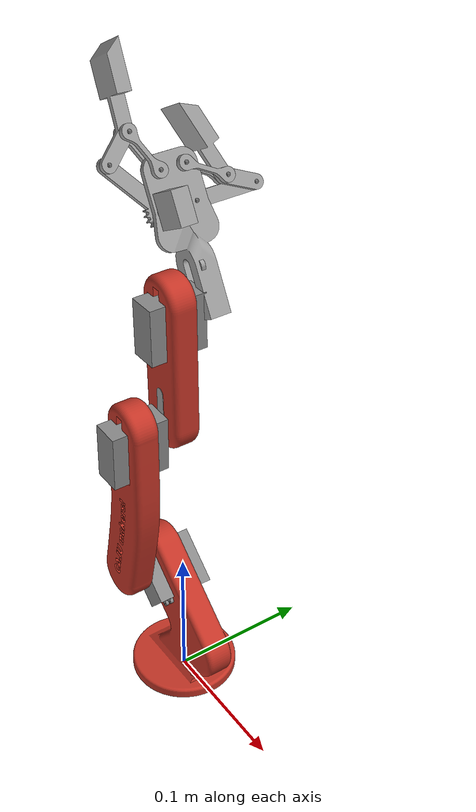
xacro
<?xml version="1.0"?>
<robot xmlns:xacro="http://www.ros.org/wiki/xacro" name="garra_final">

  <!-- Materials (shared across all assemblies) -->
  <material name="Laminado_vermelho_fosco">
    <color rgba="0.769 0.208 0.153 1.0"/>
  </material>
  <material name="Alum_nio_prata_anodizada">
    <color rgba="0.537 0.537 0.537 1.0"/>
  </material>
  <material name="A_o">
    <color rgba="0.627 0.627 0.627 1.0"/>
  </material>

  <!-- Assembly includes -->
  <xacro:include filename="$(find garra_final_description)/urdf/assemblies/Configura_o_1.urdf.xacro"/>
  <xacro:include filename="$(find garra_final_description)/urdf/assemblies/garra_final.urdf.xacro"/>

  <!-- Instantiate assemblies -->
  <xacro:Configura_o_1 prefix=""/>
  <xacro:garra_final prefix=""/>

  <!-- Mount joints (cross-assembly connections) -->
  <!-- These define how assemblies connect to each other. -->
  <!-- When swapping a dummy assembly with a real part, -->
  <!-- update the include + macro call above, and adjust -->
  <!-- parent/child link names in the mount joint below. -->

  <joint name="R_gido_73" type="fixed">
    <parent link="garra_final_showder_servo_horn_3"/>
    <child link="Base"/>
    <origin xyz="0.001272 -0.004945 0.062500" rpy="-0.896983 -1.570796 0.386126"/>
  </joint>

</robot>

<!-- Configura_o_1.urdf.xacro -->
<robot xmlns:xacro="http://www.ros.org/wiki/xacro" name="Configura_o_1_macro">

  <xacro:macro name="Configura_o_1" params="prefix">

    <!-- Links -->
    <link name="${prefix}Base">
      <inertial>
        <origin xyz="-0.057386 -0.026808 0.002045" rpy="0 0 0"/>
        <mass value="0.191532"/>
        <inertia ixx="1.578035e-04" ixy="-3.919167e-07" ixz="4.397693e-08"
                 iyy="1.697283e-05" iyz="-2.047143e-07" izz="1.622377e-04"/>
      </inertial>
      <visual>
        <origin xyz="0.000000 0.000000 0.000000" rpy="0.000000 0.000000 0.000000"/>
        <geometry>
          <mesh filename="package://garra_final_description/meshes/Configura_o_1/Base.dae" scale="1 1 1"/>
        </geometry>
        <material name="A_o"/>
      </visual>
      <collision>
        <origin xyz="0.000000 0.000000 0.000000" rpy="0.000000 0.000000 0.000000"/>
        <geometry>
          <mesh filename="package://garra_final_description/meshes/Configura_o_1/Base.dae" scale="1 1 1"/>
        </geometry>
      </collision>
    </link>

    <link name="${prefix}Motor">
      <inertial>
        <origin xyz="0.044221 0.026721 0.011750" rpy="0 0 0"/>
        <mass value="0.050915"/>
        <inertia ixx="4.587663e-06" ixy="0.000000e+00" ixz="0.000000e+00"
                 iyy="2.954137e-06" iyz="0.000000e+00" izz="2.855489e-06"/>
      </inertial>
      <visual>
        <origin xyz="0.000000 0.000000 0.000000" rpy="0.000000 0.000000 0.000000"/>
        <geometry>
          <mesh filename="package://garra_final_description/meshes/Configura_o_1/Motor.dae" scale="1 1 1"/>
        </geometry>
        <material name="A_o"/>
      </visual>
      <collision>
        <origin xyz="0.000000 0.000000 0.000000" rpy="0.000000 0.000000 0.000000"/>
        <geometry>
          <mesh filename="package://garra_final_description/meshes/Configura_o_1/Motor.dae" scale="1 1 1"/>
        </geometry>
      </collision>
    </link>

    <link name="${prefix}Engr_2">
      <inertial>
        <origin xyz="-0.012589 -0.010130 -0.001895" rpy="0 0 0"/>
        <mass value="0.020209"/>
        <inertia ixx="2.815627e-06" ixy="-2.942728e-06" ixz="-1.341961e-08"
                 iyy="4.114715e-06" iyz="-1.102947e-08" izz="6.875480e-06"/>
      </inertial>
      <visual>
        <origin xyz="0.062176 0.062886 0.004000" rpy="3.141593 0.000000 1.462285"/>
        <geometry>
          <mesh filename="package://garra_final_description/meshes/Configura_o_1/Engr_2.dae" scale="1 1 1"/>
        </geometry>
        <material name="A_o"/>
      </visual>
      <collision>
        <origin xyz="0.062176 0.062886 0.004000" rpy="3.141593 0.000000 1.462285"/>
        <geometry>
          <mesh filename="package://garra_final_description/meshes/Configura_o_1/Engr_2.dae" scale="1 1 1"/>
        </geometry>
      </collision>
    </link>

    <link name="${prefix}Junta_1">
      <inertial>
        <origin xyz="-0.013345 -0.006703 -0.002000" rpy="0 0 0"/>
        <mass value="0.006788"/>
        <inertia ixx="1.000000e-06" ixy="-4.401022e-07" ixz="0.000000e+00"
                 iyy="1.000000e-06" iyz="0.000000e+00" izz="1.165360e-06"/>
      </inertial>
      <visual>
        <origin xyz="0.096130 0.039228 -0.008000" rpy="0.000000 0.000000 -0.476992"/>
        <geometry>
          <mesh filename="package://garra_final_description/meshes/Configura_o_1/Junta_1.dae" scale="1 1 1"/>
        </geometry>
        <material name="A_o"/>
      </visual>
      <collision>
        <origin xyz="0.096130 0.039228 -0.008000" rpy="0.000000 0.000000 -0.476992"/>
        <geometry>
          <mesh filename="package://garra_final_description/meshes/Configura_o_1/Junta_1.dae" scale="1 1 1"/>
        </geometry>
      </collision>
    </link>

    <link name="${prefix}Junta_1_1">
      <inertial>
        <origin xyz="-0.013345 -0.006703 0.002000" rpy="0 0 0"/>
        <mass value="0.006788"/>
        <inertia ixx="1.000000e-06" ixy="-4.401022e-07" ixz="0.000000e+00"
                 iyy="1.000000e-06" iyz="0.000000e+00" izz="1.165360e-06"/>
      </inertial>
      <visual>
        <origin xyz="0.041768 0.030664 -0.004000" rpy="0.000000 0.000000 -1.733629"/>
        <geometry>
          <mesh filename="package://garra_final_description/meshes/Configura_o_1/Junta_1_1.dae" scale="1 1 1"/>
        </geometry>
        <material name="A_o"/>
      </visual>
      <collision>
        <origin xyz="0.041768 0.030664 -0.004000" rpy="0.000000 0.000000 -1.733629"/>
        <geometry>
          <mesh filename="package://garra_final_description/meshes/Configura_o_1/Junta_1_1.dae" scale="1 1 1"/>
        </geometry>
      </collision>
    </link>

    <link name="${prefix}Engr_1">
      <inertial>
        <origin xyz="-0.000027 0.015123 -0.002000" rpy="0 0 0"/>
        <mass value="0.023094"/>
        <inertia ixx="6.798312e-06" ixy="1.133009e-08" ixz="0.000000e+00"
                 iyy="1.000000e-06" iyz="0.000000e+00" izz="7.204434e-06"/>
      </inertial>
      <visual>
        <origin xyz="0.071958 -0.005705 0.004000" rpy="3.141593 0.000000 0.787188"/>
        <geometry>
          <mesh filename="package://garra_final_description/meshes/Configura_o_1/Engr_1.dae" scale="1 1 1"/>
        </geometry>
        <material name="A_o"/>
      </visual>
      <collision>
        <origin xyz="0.071958 -0.005705 0.004000" rpy="3.141593 0.000000 0.787188"/>
        <geometry>
          <mesh filename="package://garra_final_description/meshes/Configura_o_1/Engr_1.dae" scale="1 1 1"/>
        </geometry>
      </collision>
    </link>

    <link name="${prefix}Junta_2">
      <inertial>
        <origin xyz="0.007173 0.013099 -0.002000" rpy="0 0 0"/>
        <mass value="0.006788"/>
        <inertia ixx="1.000000e-06" ixy="-4.622335e-07" ixz="0.000000e+00"
                 iyy="1.000000e-06" iyz="0.000000e+00" izz="1.165360e-06"/>
      </inertial>
      <visual>
        <origin xyz="-0.085134 -0.072371 -0.008000" rpy="0.000000 0.000000 2.012283"/>
        <geometry>
          <mesh filename="package://garra_final_description/meshes/Configura_o_1/Junta_2.dae" scale="1 1 1"/>
        </geometry>
        <material name="A_o"/>
      </visual>
      <collision>
        <origin xyz="-0.085134 -0.072371 -0.008000" rpy="0.000000 0.000000 2.012283"/>
        <geometry>
          <mesh filename="package://garra_final_description/meshes/Configura_o_1/Junta_2.dae" scale="1 1 1"/>
        </geometry>
      </collision>
    </link>

    <link name="${prefix}Junta">
      <inertial>
        <origin xyz="0.007173 0.013099 0.002000" rpy="0 0 0"/>
        <mass value="0.006788"/>
        <inertia ixx="1.000000e-06" ixy="-4.622335e-07" ixz="0.000000e+00"
                 iyy="1.000000e-06" iyz="0.000000e+00" izz="1.165360e-06"/>
      </inertial>
      <visual>
        <origin xyz="-0.092300 0.010454 -0.004000" rpy="0.000000 0.000000 2.012283"/>
        <geometry>
          <mesh filename="package://garra_final_description/meshes/Configura_o_1/Junta.dae" scale="1 1 1"/>
        </geometry>
        <material name="A_o"/>
      </visual>
      <collision>
        <origin xyz="-0.092300 0.010454 -0.004000" rpy="0.000000 0.000000 2.012283"/>
        <geometry>
          <mesh filename="package://garra_final_description/meshes/Configura_o_1/Junta.dae" scale="1 1 1"/>
        </geometry>
      </collision>
    </link>

    <link name="${prefix}P_1">
      <inertial>
        <origin xyz="-0.043864 0.017082 0.002000" rpy="0 0 0"/>
        <mass value="0.067383"/>
        <inertia ixx="4.266957e-06" ixy="4.103313e-06" ixz="0.000000e+00"
                 iyy="2.329528e-05" iyz="0.000000e+00" izz="2.249340e-05"/>
      </inertial>
      <visual>
        <origin xyz="0.090726 0.097578 0.004000" rpy="3.141593 0.000000 1.531470"/>
        <geometry>
          <mesh filename="package://garra_final_description/meshes/Configura_o_1/P_1.dae" scale="1 1 1"/>
        </geometry>
        <material name="A_o"/>
      </visual>
      <collision>
        <origin xyz="0.090726 0.097578 0.004000" rpy="3.141593 0.000000 1.531470"/>
        <geometry>
          <mesh filename="package://garra_final_description/meshes/Configura_o_1/P_1.dae" scale="1 1 1"/>
        </geometry>
      </collision>
    </link>

    <link name="${prefix}P_1_1">
      <inertial>
        <origin xyz="-0.036361 -0.029895 0.002000" rpy="0 0 0"/>
        <mass value="0.067383"/>
        <inertia ixx="8.541989e-06" ixy="-8.939125e-06" ixz="0.000000e+00"
                 iyy="1.902025e-05" iyz="0.000000e+00" izz="2.249340e-05"/>
      </inertial>
      <visual>
        <origin xyz="0.076169 0.044258 0.004000" rpy="3.141593 0.000000 1.926866"/>
        <geometry>
          <mesh filename="package://garra_final_description/meshes/Configura_o_1/P_1_1.dae" scale="1 1 1"/>
        </geometry>
        <material name="A_o"/>
      </visual>
      <collision>
        <origin xyz="0.076169 0.044258 0.004000" rpy="3.141593 0.000000 1.926866"/>
        <geometry>
          <mesh filename="package://garra_final_description/meshes/Configura_o_1/P_1_1.dae" scale="1 1 1"/>
        </geometry>
      </collision>
    </link>

    <!-- Joints (internal to assembly) -->
    <joint name="${prefix}R_gido_77" type="fixed">
      <parent link="${prefix}Base"/>
      <child link="${prefix}Motor"/>
      <origin xyz="-0.113471 -0.081721 -0.023500" rpy="0.000000 0.000000 0.000000"/>
    </joint>

    <joint name="${prefix}Revolucionar_85" type="continuous">
      <parent link="${prefix}Base"/>
      <child link="${prefix}Engr_2"/>
      <origin xyz="-0.069250 -0.055000 0.004000" rpy="-3.141593 0.000000 1.570796"/>
      <axis xyz="0.000000 0.000000 1.000000"/>
      <limit effort="100.0" velocity="1.00"/>
    </joint>

    <joint name="${prefix}Revolucionar_87" type="continuous">
      <parent link="${prefix}Base"/>
      <child link="${prefix}Junta_1"/>
      <origin xyz="-0.067140 -0.079000 0.004000" rpy="-3.141593 0.000000 1.570796"/>
      <axis xyz="0.000000 0.000000 1.000000"/>
      <limit effort="100.0" velocity="1.00"/>
    </joint>

    <joint name="${prefix}Revolucionar_89" type="continuous">
      <parent link="${prefix}Base"/>
      <child link="${prefix}Junta_1_1"/>
      <origin xyz="-0.067140 -0.079000 0.000000" rpy="-3.141593 0.000000 1.570796"/>
      <axis xyz="0.000000 0.000000 1.000000"/>
      <limit effort="100.0" velocity="1.00"/>
    </joint>

    <joint name="${prefix}Revolucionar_91" type="continuous">
      <parent link="${prefix}Base"/>
      <child link="${prefix}Engr_1"/>
      <origin xyz="-0.046750 -0.055000 0.004000" rpy="-3.141593 0.000000 1.570796"/>
      <axis xyz="0.000000 0.000000 1.000000"/>
      <limit effort="100.0" velocity="1.00"/>
    </joint>

    <joint name="${prefix}Revolucionar_93" type="continuous">
      <parent link="${prefix}Base"/>
      <child link="${prefix}Junta_2"/>
      <origin xyz="-0.048860 -0.079000 0.004000" rpy="-3.141593 0.000000 1.570796"/>
      <axis xyz="0.000000 0.000000 1.000000"/>
      <limit effort="100.0" velocity="1.00"/>
    </joint>

    <joint name="${prefix}Revolucionar_95" type="continuous">
      <parent link="${prefix}Base"/>
      <child link="${prefix}Junta"/>
      <origin xyz="-0.048860 -0.079000 0.000000" rpy="-3.141593 0.000000 1.570796"/>
      <axis xyz="0.000000 0.000000 1.000000"/>
      <limit effort="100.0" velocity="1.00"/>
    </joint>

    <joint name="${prefix}Revolucionar_86" type="continuous">
      <parent link="${prefix}Engr_2"/>
      <child link="${prefix}P_1"/>
      <origin xyz="-0.035079 -0.028187 0.000000" rpy="0.000000 0.000000 0.000000"/>
      <axis xyz="0.000000 0.000000 1.000000"/>
      <limit effort="100.0" velocity="1.00"/>
    </joint>

    <joint name="${prefix}Revolucionar_92" type="continuous">
      <parent link="${prefix}Engr_1"/>
      <child link="${prefix}P_1_1"/>
      <origin xyz="-0.000081 0.045000 0.000000" rpy="0.000000 0.000000 0.000000"/>
      <axis xyz="0.000000 0.000000 1.000000"/>
      <limit effort="100.0" velocity="1.00"/>
    </joint>

    <!-- ROS 2 control: generated generic system -->
    <ros2_control name="${prefix}Configura_o_1_system" type="system">
      <hardware>
        <plugin>mock_components/GenericSystem</plugin>
        <param name="cmd_topic">sim/Configura_o_1_system/cmd</param>
        <param name="state_topic">sim/Configura_o_1_system/state</param>
      </hardware>

      <joint name="${prefix}Revolucionar_85">
        <command_interface name="position"/>
        <command_interface name="velocity"/>
        <state_interface name="position">
          <param name="initial_value">0.0</param>
        </state_interface>
        <state_interface name="velocity"/>
        <state_interface name="effort"/>
      </joint>
      <joint name="${prefix}Revolucionar_86">
        <command_interface name="position"/>
        <command_interface name="velocity"/>
        <state_interface name="position">
          <param name="initial_value">0.0</param>
        </state_interface>
        <state_interface name="velocity"/>
        <state_interface name="effort"/>
      </joint>
      <joint name="${prefix}Revolucionar_87">
        <command_interface name="position"/>
        <command_interface name="velocity"/>
        <state_interface name="position">
          <param name="initial_value">0.0</param>
        </state_interface>
        <state_interface name="velocity"/>
        <state_interface name="effort"/>
      </joint>
      <joint name="${prefix}Revolucionar_89">
        <command_interface name="position"/>
        <command_interface name="velocity"/>
        <state_interface name="position">
          <param name="initial_value">0.0</param>
        </state_interface>
        <state_interface name="velocity"/>
        <state_interface name="effort"/>
      </joint>
      <joint name="${prefix}Revolucionar_91">
        <command_interface name="position"/>
        <command_interface name="velocity"/>
        <state_interface name="position">
          <param name="initial_value">0.0</param>
        </state_interface>
        <state_interface name="velocity"/>
        <state_interface name="effort"/>
      </joint>
      <joint name="${prefix}Revolucionar_92">
        <command_interface name="position"/>
        <command_interface name="velocity"/>
        <state_interface name="position">
          <param name="initial_value">0.0</param>
        </state_interface>
        <state_interface name="velocity"/>
        <state_interface name="effort"/>
      </joint>
      <joint name="${prefix}Revolucionar_93">
        <command_interface name="position"/>
        <command_interface name="velocity"/>
        <state_interface name="position">
          <param name="initial_value">0.0</param>
        </state_interface>
        <state_interface name="velocity"/>
        <state_interface name="effort"/>
      </joint>
      <joint name="${prefix}Revolucionar_95">
        <command_interface name="position"/>
        <command_interface name="velocity"/>
        <state_interface name="position">
          <param name="initial_value">0.0</param>
        </state_interface>
        <state_interface name="velocity"/>
        <state_interface name="effort"/>
      </joint>
    </ros2_control>

  </xacro:macro>

</robot>

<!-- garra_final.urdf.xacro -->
<robot xmlns:xacro="http://www.ros.org/wiki/xacro" name="garra_final_macro">

  <xacro:macro name="garra_final" params="prefix">

    <!-- Links -->
    <link name="${prefix}base_link">
      <inertial>
        <origin xyz="0.000333 0.000000 0.041536" rpy="0 0 0"/>
        <mass value="0.122493"/>
        <inertia ixx="1.488707e-04" ixy="0.000000e+00" ixz="3.196556e-05"
                 iyy="1.961067e-04" iyz="0.000000e+00" izz="8.370648e-05"/>
      </inertial>
      <visual>
        <origin xyz="0.000000 0.000000 0.000000" rpy="0.000000 0.000000 0.000000"/>
        <geometry>
          <mesh filename="package://garra_final_description/meshes/garra_final/base_link.dae" scale="1 1 1"/>
        </geometry>
        <material name="Laminado_vermelho_fosco"/>
      </visual>
      <collision>
        <origin xyz="0.000000 0.000000 0.000000" rpy="0.000000 0.000000 0.000000"/>
        <geometry>
          <mesh filename="package://garra_final_description/meshes/garra_final/base_link.dae" scale="1 1 1"/>
        </geometry>
      </collision>
    </link>

    <link name="${prefix}shoulder_motor">
      <inertial>
        <origin xyz="-0.016764 -0.000763 0.079997" rpy="0 0 0"/>
        <mass value="0.089211"/>
        <inertia ixx="1.929411e-05" ixy="-4.785893e-08" ixz="4.449074e-06"
                 iyy="1.495797e-05" iyz="4.048953e-08" izz="2.086252e-05"/>
      </inertial>
      <visual>
        <origin xyz="0.000000 0.000000 0.000000" rpy="0.000000 0.000000 0.000000"/>
        <geometry>
          <mesh filename="package://garra_final_description/meshes/garra_final/shoulder_motor.dae" scale="1 1 1"/>
        </geometry>
        <material name="Alum_nio_prata_anodizada"/>
      </visual>
      <collision>
        <origin xyz="0.000000 0.000000 0.000000" rpy="0.000000 0.000000 0.000000"/>
        <geometry>
          <mesh filename="package://garra_final_description/meshes/garra_final/shoulder_motor.dae" scale="1 1 1"/>
        </geometry>
      </collision>
    </link>

    <link name="${prefix}garra_final_showder_servo_horn">
      <inertial>
        <origin xyz="-0.006829 0.005264 -0.001500" rpy="0 0 0"/>
        <mass value="0.007175"/>
        <inertia ixx="1.000000e-06" ixy="2.998637e-07" ixz="0.000000e+00"
                 iyy="1.000000e-06" iyz="0.000000e+00" izz="1.000000e-06"/>
      </inertial>
      <visual>
        <origin xyz="0.015787 -0.085385 -0.003000" rpy="0.000000 0.000000 0.000000"/>
        <geometry>
          <mesh filename="package://garra_final_description/meshes/garra_final/garra_final_showder_servo_horn.dae" scale="1 1 1"/>
        </geometry>
        <material name="A_o"/>
      </visual>
      <collision>
        <origin xyz="0.015787 -0.085385 -0.003000" rpy="0.000000 0.000000 0.000000"/>
        <geometry>
          <mesh filename="package://garra_final_description/meshes/garra_final/garra_final_showder_servo_horn.dae" scale="1 1 1"/>
        </geometry>
      </collision>
    </link>

    <link name="${prefix}M_dulo_1">
      <inertial>
        <origin xyz="0.018424 -0.033973 0.129529" rpy="0 0 0"/>
        <mass value="0.096143"/>
        <inertia ixx="1.195199e-04" ixy="-1.450615e-07" ixz="-1.036412e-04"
                 iyy="2.332425e-04" iyz="-1.168777e-07" izz="1.209736e-04"/>
      </inertial>
      <visual>
        <origin xyz="0.000000 0.000000 0.000000" rpy="0.000000 0.000000 0.000000"/>
        <geometry>
          <mesh filename="package://garra_final_description/meshes/garra_final/M_dulo_1.dae" scale="1 1 1"/>
        </geometry>
        <material name="Laminado_vermelho_fosco"/>
      </visual>
      <collision>
        <origin xyz="0.000000 0.000000 0.000000" rpy="0.000000 0.000000 0.000000"/>
        <geometry>
          <mesh filename="package://garra_final_description/meshes/garra_final/M_dulo_1.dae" scale="1 1 1"/>
        </geometry>
      </collision>
    </link>

    <link name="${prefix}MOTOR_1">
      <inertial>
        <origin xyz="0.053925 -0.033237 0.166019" rpy="0 0 0"/>
        <mass value="0.089211"/>
        <inertia ixx="2.086308e-05" ixy="-4.010090e-08" ixz="-4.448976e-06"
                 iyy="1.495797e-05" iyz="-4.818499e-08" izz="1.929356e-05"/>
      </inertial>
      <visual>
        <origin xyz="0.000000 0.000000 0.000000" rpy="0.000000 0.000000 0.000000"/>
        <geometry>
          <mesh filename="package://garra_final_description/meshes/garra_final/MOTOR_1.dae" scale="1 1 1"/>
        </geometry>
        <material name="Alum_nio_prata_anodizada"/>
      </visual>
      <collision>
        <origin xyz="0.000000 0.000000 0.000000" rpy="0.000000 0.000000 0.000000"/>
        <geometry>
          <mesh filename="package://garra_final_description/meshes/garra_final/MOTOR_1.dae" scale="1 1 1"/>
        </geometry>
      </collision>
    </link>

    <link name="${prefix}garra_final_showder_servo_horn_2">
      <inertial>
        <origin xyz="-0.006829 0.005264 0.001500" rpy="0 0 0"/>
        <mass value="0.007175"/>
        <inertia ixx="1.000000e-06" ixy="2.998637e-07" ixz="0.000000e+00"
                 iyy="1.000000e-06" iyz="0.000000e+00" izz="1.000000e-06"/>
      </inertial>
      <visual>
        <origin xyz="0.015787 -0.085385 0.000000" rpy="0.000000 0.000000 0.000000"/>
        <geometry>
          <mesh filename="package://garra_final_description/meshes/garra_final/garra_final_showder_servo_horn_2.dae" scale="1 1 1"/>
        </geometry>
        <material name="A_o"/>
      </visual>
      <collision>
        <origin xyz="0.015787 -0.085385 0.000000" rpy="0.000000 0.000000 0.000000"/>
        <geometry>
          <mesh filename="package://garra_final_description/meshes/garra_final/garra_final_showder_servo_horn_2.dae" scale="1 1 1"/>
        </geometry>
      </collision>
    </link>

    <link name="${prefix}M_dulo_2">
      <inertial>
        <origin xyz="0.104698 0.000412 0.173614" rpy="0 0 0"/>
        <mass value="0.070749"/>
        <inertia ixx="1.156834e-05" ixy="1.910002e-07" ixz="-1.551575e-08"
                 iyy="9.825746e-05" iyz="7.836475e-10" izz="9.164356e-05"/>
      </inertial>
      <visual>
        <origin xyz="0.000000 0.000000 0.000000" rpy="0.000000 0.000000 0.000000"/>
        <geometry>
          <mesh filename="package://garra_final_description/meshes/garra_final/M_dulo_2.dae" scale="1 1 1"/>
        </geometry>
        <material name="Laminado_vermelho_fosco"/>
      </visual>
      <collision>
        <origin xyz="0.000000 0.000000 0.000000" rpy="0.000000 0.000000 0.000000"/>
        <geometry>
          <mesh filename="package://garra_final_description/meshes/garra_final/M_dulo_2.dae" scale="1 1 1"/>
        </geometry>
      </collision>
    </link>

    <link name="${prefix}MOTOR_1_1">
      <inertial>
        <origin xyz="0.137478 0.000880 0.173458" rpy="0 0 0"/>
        <mass value="0.089211"/>
        <inertia ixx="1.556066e-05" ixy="-6.268823e-08" ixz="-2.821390e-10"
                 iyy="1.495797e-05" iyz="-2.536528e-10" izz="2.459598e-05"/>
      </inertial>
      <visual>
        <origin xyz="0.000000 0.000000 0.000000" rpy="0.000000 0.000000 0.000000"/>
        <geometry>
          <mesh filename="package://garra_final_description/meshes/garra_final/MOTOR_1_1.dae" scale="1 1 1"/>
        </geometry>
        <material name="Alum_nio_prata_anodizada"/>
      </visual>
      <collision>
        <origin xyz="0.000000 0.000000 0.000000" rpy="0.000000 0.000000 0.000000"/>
        <geometry>
          <mesh filename="package://garra_final_description/meshes/garra_final/MOTOR_1_1.dae" scale="1 1 1"/>
        </geometry>
      </collision>
    </link>

    <link name="${prefix}garra_final_showder_servo_horn_3">
      <inertial>
        <origin xyz="-0.000294 -0.008617 0.001500" rpy="0 0 0"/>
        <mass value="0.007175"/>
        <inertia ixx="1.000000e-06" ixy="-2.116718e-08" ixz="0.000000e+00"
                 iyy="1.000000e-06" iyz="0.000000e+00" izz="1.000000e-06"/>
      </inertial>
      <visual>
        <origin xyz="-0.055746 0.066574 0.003000" rpy="-3.141593 0.000000 0.879928"/>
        <geometry>
          <mesh filename="package://garra_final_description/meshes/garra_final/garra_final_showder_servo_horn_3.dae" scale="1 1 1"/>
        </geometry>
        <material name="A_o"/>
      </visual>
      <collision>
        <origin xyz="-0.055746 0.066574 0.003000" rpy="-3.141593 0.000000 0.879928"/>
        <geometry>
          <mesh filename="package://garra_final_description/meshes/garra_final/garra_final_showder_servo_horn_3.dae" scale="1 1 1"/>
        </geometry>
      </collision>
    </link>

    <!-- Joints (internal to assembly) -->
    <joint name="${prefix}R_gido" type="fixed">
      <parent link="${prefix}base_link"/>
      <child link="${prefix}shoulder_motor"/>
      <origin xyz="-0.002399 0.000644 0.000258" rpy="0.000000 0.011578 0.000000"/>
    </joint>

    <joint name="${prefix}Revolucionar_46" type="continuous">
      <parent link="${prefix}shoulder_motor"/>
      <child link="${prefix}garra_final_showder_servo_horn"/>
      <origin xyz="-0.023838 -0.025144 0.086064" rpy="1.570796 1.131260 0.000000"/>
      <axis xyz="0.000000 0.000000 1.000000"/>
      <limit effort="100.0" velocity="1.00"/>
    </joint>

    <joint name="${prefix}R_gido_47" type="fixed">
      <parent link="${prefix}garra_final_showder_servo_horn"/>
      <child link="${prefix}M_dulo_1"/>
      <origin xyz="0.074914 0.050317 -0.030000" rpy="-1.570796 0.000000 1.832596"/>
    </joint>

    <joint name="${prefix}R_gido_48" type="fixed">
      <parent link="${prefix}M_dulo_1"/>
      <child link="${prefix}MOTOR_1"/>
      <origin xyz="0.002592 -0.000644 0.004103" rpy="0.000000 0.000000 0.000000"/>
    </joint>

    <joint name="${prefix}Revolucionar_49" type="continuous">
      <parent link="${prefix}MOTOR_1"/>
      <child link="${prefix}garra_final_showder_servo_horn_2"/>
      <origin xyz="0.059838 -0.008856 0.173222" rpy="1.570796 1.536874 0.000000"/>
      <axis xyz="0.000000 0.000000 -1.000000"/>
      <limit effort="100.0" velocity="1.00"/>
    </joint>

    <joint name="${prefix}R_gido_50" type="fixed">
      <parent link="${prefix}garra_final_showder_servo_horn_2"/>
      <child link="${prefix}M_dulo_2"/>
      <origin xyz="0.160854 0.091479 -0.006666" rpy="-1.570796 0.000000 2.443461"/>
    </joint>

    <joint name="${prefix}R_gido_65" type="fixed">
      <parent link="${prefix}M_dulo_2"/>
      <child link="${prefix}MOTOR_1_1"/>
      <origin xyz="-0.000300 -0.000428 0.000662" rpy="0.000000 0.000000 0.000000"/>
    </joint>

    <joint name="${prefix}Revolucionar_72" type="continuous">
      <parent link="${prefix}MOTOR_1_1"/>
      <child link="${prefix}garra_final_showder_servo_horn_3"/>
      <origin xyz="0.146796 0.022261 0.173559" rpy="1.570796 1.545249 3.141593"/>
      <axis xyz="0.000000 0.000000 1.000000"/>
      <limit effort="100.0" velocity="1.00"/>
    </joint>

    <!-- ROS 2 control: generated generic system -->
    <ros2_control name="${prefix}garra_final_system" type="system">
      <hardware>
        <plugin>mock_components/GenericSystem</plugin>
        <param name="cmd_topic">sim/garra_final_system/cmd</param>
        <param name="state_topic">sim/garra_final_system/state</param>
      </hardware>

      <joint name="${prefix}Revolucionar_46">
        <command_interface name="position"/>
        <command_interface name="velocity"/>
        <state_interface name="position">
          <param name="initial_value">0.0</param>
        </state_interface>
        <state_interface name="velocity"/>
        <state_interface name="effort"/>
      </joint>
      <joint name="${prefix}Revolucionar_49">
        <command_interface name="position"/>
        <command_interface name="velocity"/>
        <state_interface name="position">
          <param name="initial_value">0.0</param>
        </state_interface>
        <state_interface name="velocity"/>
        <state_interface name="effort"/>
      </joint>
      <joint name="${prefix}Revolucionar_72">
        <command_interface name="position"/>
        <command_interface name="velocity"/>
        <state_interface name="position">
          <param name="initial_value">0.0</param>
        </state_interface>
        <state_interface name="velocity"/>
        <state_interface name="effort"/>
      </joint>
    </ros2_control>

  </xacro:macro>

</robot>
